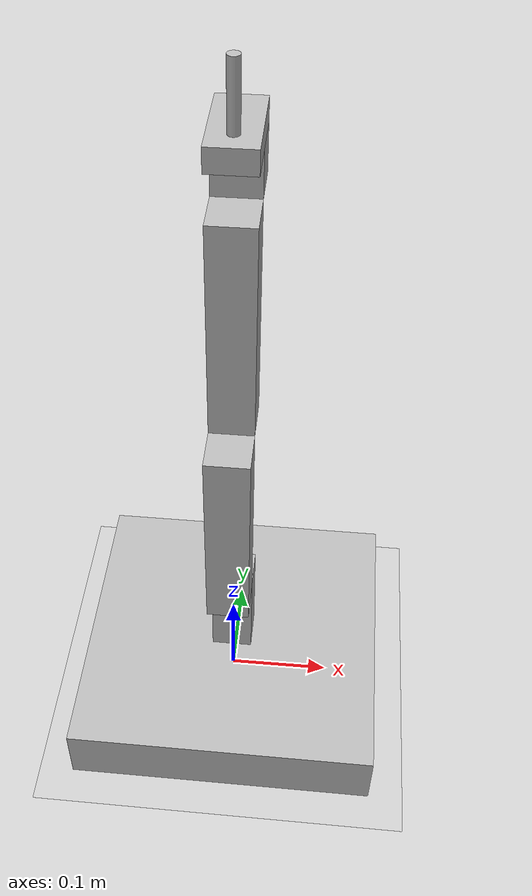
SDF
<?xml version="1.0" ?>
<sdf version='1.6'>
  <world name='default'>
    <include>
      <uri>model://sun</uri>
    </include>
    <include>
      <uri>model://ground_plane</uri>
    </include>

    <include>
      <name>arm_4dof</name>
      <uri>model://arm_4dof</uri>
      <pose>0 0 0 0 0 0</pose>
    </include>

    <scene>
      <ambient>0.6 0.6 0.6 1</ambient>
      <background>0.6 0.6 0.6 1</background>
      <shadows>1</shadows>
    </scene>
    <physics type='ode'>
      <max_step_size>0.005</max_step_size>
      <real_time_factor>1</real_time_factor>
      <real_time_update_rate>200</real_time_update_rate>
    </physics>
  </world>
</sdf>

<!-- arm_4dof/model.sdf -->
<sdf version="1.4">
  <model name="arm_4dof">
    <link name="body_link">
      <pose>0 0 0.03 0 0 0</pose>
      <inertial>
        <mass>2.0</mass>
        <inertia>
          <ixx>0.0083</ixx>
          <ixy>0.0</ixy>
          <ixz>0.0</ixz>
          <iyy>0.0083</iyy>
          <iyz>0.0</iyz>
          <izz>0.0083</izz>
        </inertia>
      </inertial>
      <collision name="collision">
        <geometry>
          <box>
            <size>0.3 0.3 0.06</size>
          </box>
        </geometry>
      </collision>
      <visual name="visual">
        <geometry>
          <box>
            <size>0.3 0.3 0.06</size>
          </box>
        </geometry>
      </visual>
    </link>

    <joint name='arm0_joint' type='fixed'>
      <parent>body_link</parent>
      <child>arm0_link</child>
      <pose>0 0 0.08 0 0 0</pose>
      <axis>
        <use_parent_model_frame>true</use_parent_model_frame>
        <xyz>0 0 1</xyz>
      </axis>
    </joint>
    <link name="arm0_link">
      <pose>0 0 0.11 0 0 0</pose>
      <inertial>
        <mass>0.1</mass>
        <inertia>
          <ixx>0.0083</ixx>
          <ixy>0.0</ixy>
          <ixz>0.0</ixz>
          <iyy>0.0083</iyy>
          <iyz>0.0</iyz>
          <izz>0.0083</izz>
        </inertia>
      </inertial>
      <collision name="collision">
        <geometry>
          <box>
            <size>0.04 0.04 0.1</size>
          </box>
        </geometry>
      </collision>
      <visual name="visual">
        <geometry>
          <box>
            <size>0.04 0.04 0.1</size>
          </box>
        </geometry>
      </visual>
    </link>

    <joint name='arm1_joint' type='fixed'>
      <parent>arm0_link</parent>
      <child>arm1_link</child>
      <pose>0 0 0.16 0 0 0</pose>
      <axis>
        <use_parent_model_frame>true</use_parent_model_frame>
        <xyz>0 1 0</xyz>
      </axis>
    </joint>
    <link name="arm1_link">
      <pose>0 -0.04 0.26 0 0 0</pose>
      <inertial>
        <mass>0.1</mass>
        <inertia>
          <ixx>0.0083</ixx>
          <ixy>0.0</ixy>
          <ixz>0.0</ixz>
          <iyy>0.0083</iyy>
          <iyz>0.0</iyz>
          <izz>0.0083</izz>
        </inertia>
      </inertial>
      <collision name="collision">
        <geometry>
          <box>
            <size>0.04 0.04 0.2</size>
          </box>
        </geometry>
      </collision>
      <visual name="visual">
        <geometry>
          <box>
            <size>0.04 0.04 0.2</size>
          </box>
        </geometry>
      </visual>
    </link>

    <joint name='arm2_joint' type='fixed'>
      <parent>arm1_link</parent>
      <child>arm2_link</child>
      <pose>0 0 0.36 0 0 0</pose>
      <axis>
        <use_parent_model_frame>true</use_parent_model_frame>
        <xyz>0 1 0</xyz>
      </axis>
    </joint>
    <link name="arm2_link">
      <pose>0 0 0.46 0 0 0</pose>
      <inertial>
        <mass>0.1</mass>
        <inertia>
          <ixx>0.0083</ixx>
          <ixy>0.0</ixy>
          <ixz>0.0</ixz>
          <iyy>0.0083</iyy>
          <iyz>0.0</iyz>
          <izz>0.0083</izz>
        </inertia>
      </inertial>
      <collision name="collision">
        <geometry>
          <box>
            <size>0.04 0.04 0.2</size>
          </box>
        </geometry>
      </collision>
      <visual name="visual">
        <geometry>
          <box>
            <size>0.04 0.04 0.2</size>
          </box>
        </geometry>
      </visual>
    </link>

    <joint name='arm3_joint' type='fixed'>
      <parent>arm2_link</parent>
      <child>arm3_link</child>
      <pose>0 0 0.56 0 0 0</pose>
      <axis>
        <use_parent_model_frame>true</use_parent_model_frame>
        <xyz>0 1 0</xyz>
      </axis>
    </joint>
    <link name="arm3_link">
      <pose>0 0 0.62 0 0 0</pose>
      <inertial>
        <mass>0.1</mass>
        <inertia>
          <ixx>0.0083</ixx>
          <ixy>0.0</ixy>
          <ixz>0.0</ixz>
          <iyy>0.0083</iyy>
          <iyz>0.0</iyz>
          <izz>0.0083</izz>
        </inertia>
      </inertial>
      <collision name="collision1">
        <pose>0 0.04 -0.04 0 0 0</pose>
        <geometry>
          <box>
            <size>0.04 0.04 0.04</size>
          </box>
        </geometry>
      </collision>
      <visual name="visual1">
        <pose>0 0.04 -0.04 0 0 0</pose>
        <geometry>
          <box>
            <size>0.04 0.04 0.04</size>
          </box>
        </geometry>
      </visual>
      <collision name="collision2">
        <pose>0 0.02 -0.01 0 0 0</pose>
        <geometry>
          <box>
            <size>0.04 0.08 0.02</size>
          </box>
        </geometry>
      </collision>
      <visual name="visual2">
        <pose>0 0.02 -0.01 0 0 0</pose>
        <geometry>
          <box>
            <size>0.04 0.08 0.02</size>
          </box>
        </geometry>
      </visual>
      <collision name="collision3">
        <pose>0 0 0.03 0 0 0</pose>
        <geometry>
          <cylinder>
            <radius>0.01</radius>
            <length>0.06</length>
          </cylinder>
        </geometry>
      </collision>
      <visual name="visual3">
        <pose>0 0 0.025 0 0 0</pose>
        <geometry>
          <cylinder>
            <radius>0.005</radius>
            <length>0.06</length>
          </cylinder>
        </geometry>
      </visual>
    </link>
  </model>
</sdf>
